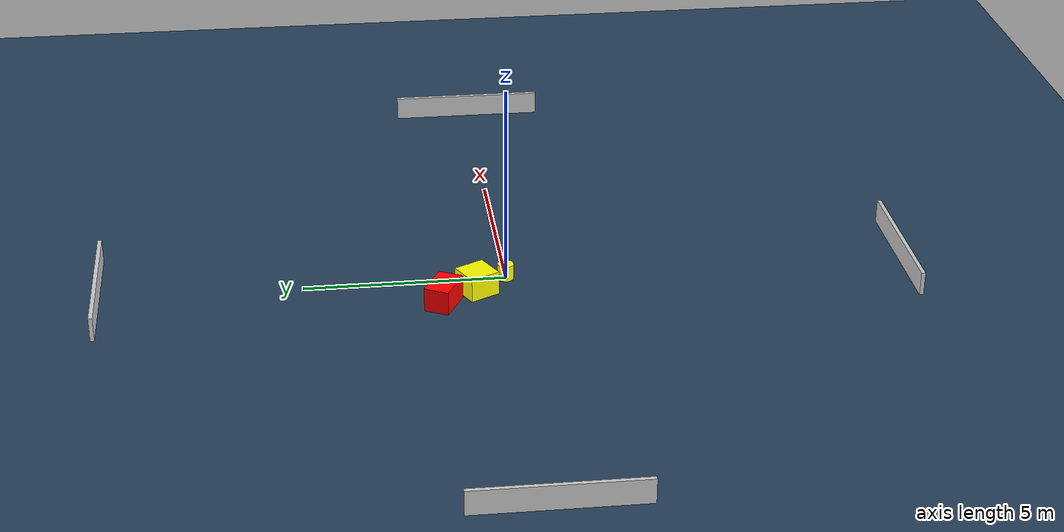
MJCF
<?xml version="1.0" ?>
<mujoco model="generated_environment">
  <option timestep="0.01" integrator="RK4" cone="elliptic"/>
  <default>
    <geom density="1"/>
  </default>
  <asset>
    <texture builtin="gradient" height="3072" name="skybox" rgb1="0.3 0.5 0.7" rgb2="0 0 0" type="skybox" width="512"/>
    <texture builtin="checker" height="300" name="groundplane" rgb1="0.2 0.3 0.4" rgb2="0.1 0.2 0.3" type="2d" width="300"/>
    <material name="groundplane" reflectance="0.2" texrepeat="5 5" texture="groundplane"/>
  </asset>
  <worldbody>
    <light dir="0 0 -1" directional="true" pos="0 0 1.5"/>
    <geom condim="3" friction="0.5 0.005 0.001" material="groundplane" name="floor" pos="0 0 0" size="0 0 0.05" type="plane"/>
    <body name="walls">
      <geom name="wall_1" condim="4" pos="-10.0 0.0 0.3" rgba="0.800000011920929 0.800000011920929 0.800000011920929 1.0" size="0.05 2.0 0.3" type="box"/>
      <geom name="wall_2" condim="4" pos="10.0 0.0 0.3" rgba="0.800000011920929 0.800000011920929 0.800000011920929 1.0" size="0.05 2.0 0.3" type="box"/>
      <geom name="wall_3" condim="4" pos="0.0 -10.0 0.3" rgba="0.800000011920929 0.800000011920929 0.800000011920929 1.0" size="2.0 0.05 0.3" type="box"/>
      <geom name="wall_4" condim="4" pos="0.0 10.0 0.3" rgba="0.800000011920929 0.800000011920929 0.800000011920929 1.0" size="2.0 0.05 0.3" type="box"/>
    </body>
    <body name="robot">
      <joint name="joint_x" type="slide" pos="0 0 0" axis="1 0 0"/>
      <joint name="joint_y" type="slide" pos="0 0 0" axis="0 1 0"/>
      <geom name="robot" type="cylinder" pos="0.0 0.0 0.2" size="0.2 0.2 0.0" mass="5.0" friction="1.0 0.005 0.0001" condim="4" rgba="1.0 1.0 0.0 1.0"/>
    </body>
    <body name="obstacle_1_movable">
      <geom name="obstacle_1_movable" condim="4" pos="-0.6165434764704606 0.7728337033137946 0.3" euler="0 0 27.509044950496925" friction="0.0 0.005 0.001" rgba="1.0 1.0 0.0 1.0" size="0.37968608583587754 0.3950984331353895 0.3" type="box" mass="0.1"/>
      <joint type="free"/>
    </body>
    <body name="obstacle_2_static">
      <geom name="obstacle_2_static" condim="4" pos="-1.1395263167372656 1.6345969400477907 0.3" euler="0 0 332.8534279663796" friction="0.0 0.005 0.001" rgba="1.0 0.0 0.0 1.0" size="0.4786253821793555 0.31215895428189244 0.3" type="box"/>
    </body>
  </worldbody>
  <actuator>
    <motor name="actuator_x" joint="joint_x" gear="1" ctrlrange="-1 1"/>
    <motor name="actuator_y" joint="joint_y" gear="1" ctrlrange="-1 1"/>
  </actuator>
</mujoco>
